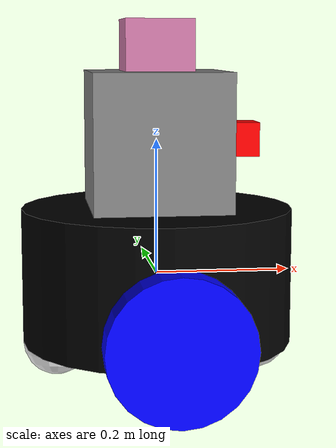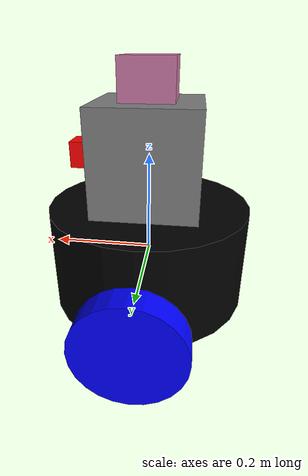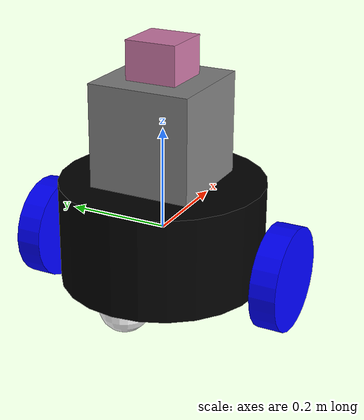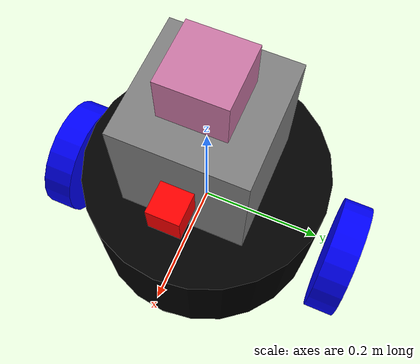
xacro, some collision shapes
<?xml version='1.0'?>

<robot name="ground_bot_diff" xmlns:xacro="http://www.ros.org/wiki/xacro">

<xacro:include filename="$(find udacity_bot)/urdf/ground_bot_diff.gazebo"/>

	<link name="robot_footprint"></link>

	<joint name="robot_footprint_joint" type="fixed">
		<origin xyz="0 0 0" rpy="0 0 0"/>
		<parent link="robot_footprint"/>
		<child link="chassis"/>
	</joint>

	<link name='chassis'>
		<pose>0 0 0.05 0 0 0</pose>

		<inertial>
			<mass value="20.0"/>
			<origin xyz="0 0 0" rpy="0 0 0"/>
			<inertia
			ixx="0.26" ixy="0" ixz="0"
			iyy="0.26" iyz="0"
			izz="0.4"
			/>
    	</inertial>

    	<collision name='collision'>
    		<origin xyz="0 0 0" rpy="0 0 0"/>
    		<geometry>
    			<cylinder radius="0.2" length="0.2"/>
    		</geometry>
    	</collision>

    	<visual name='chassis_visual'>
    		<origin xyz="0 0 0" rpy="0 0 0"/>
    		<geometry>
    			<cylinder radius="0.2" length="0.2"/>
    		</geometry>
    		<material name="black">
    			<color rgba="0 0 0 1"/>
    		</material>
    	</visual>

    	<collision name='back_caster_collision'>
    		<origin xyz="-0.15 0 -0.1" rpy="0 0 0"/>
    		<geometry>
    			<sphere radius="0.05"/>
    		</geometry>
    		<surface>
    			<friction>
    				<ode>
    					<mu>0</mu>
    					<mu2>0</mu2>
    				</ode>
    			</friction>
    		</surface>
    	</collision>

    	<visual name='back_caster_visual'>
    		<origin xyz="-0.15 0 -0.1" rpy="0 0 0"/>
    		<geometry>
    			<sphere radius="0.05"/>
    		</geometry>
    		<material name="white">
    			<color rgba="1 1 1 1"/>
    		</material>
    	</visual>

    	<collision name='front_caster_collision'>
    		<origin xyz="0.15 0 -0.1" rpy="0 0 0"/>
    		<geometry>
    			<sphere radius="0.05"/>
    		</geometry>
    		<surface>
    			<friction>
    				<ode>
    					<mu>0</mu>
    					<mu2>0</mu2>
    				</ode>
    			</friction>
    		</surface>
    	</collision>

    	<visual name='front_caster_visual'>
    		<origin xyz="0.15 0 -0.1" rpy="0 0 0"/>
    		<geometry>
    			<sphere radius="0.05"/>
    		</geometry>
    		<material name="white">
    			<color rgba="1 1 1 1"/>
    		</material>
    	</visual>

	</link>

	<joint name="upper_joint" type="fixed">
		<origin xyz="0 0 0.2" rpy="0 0 0"/>
		<parent link="chassis"/>
		<child link="upper_body"/>
	</joint>

	<link name="upper_body">
		<inertial>
			<mass value="10.0"/>
			<origin xyz="0 0 0" rpy="0 0 0"/>
			<inertia
			ixx="0.067" ixy="0" ixz="0"
			iyy="0.067" iyz="0"
			izz="0.067"
			/>
    	</inertial>

    	<visual name='upper_body_visual'>
    		<origin xyz="0 0 0" rpy="0 0 0"/>
    		<geometry>
    			<box size="0.2 0.2 0.2"/>
    		</geometry>
    		<material name="grey">
    			<color rgba="0.5 0.5 0.5 1"/>
    		</material>
    	</visual>

    	<collision name='upper_body_collision'>
    		<origin xyz="0 0 0" rpy="0 0 0"/>
			<geometry>
    			<box size="0.2 0.2 0.2"/>
    		</geometry>
    	</collision>
    </link>

	<joint name="left_wheel_hinge" type="continuous">
		<origin xyz="0 0.25 -0.05" rpy="0 0 0"/>
		<parent link="chassis"/>
		<child link="left_wheel"/>
		<axis xyz="0 1 0" rpy="0 0 0"/>
		<limit effort="10000" velocity="1000"/>
		<joint_properties damping="1.0" friction="1.0"/>
	</joint>

	<link name='left_wheel'>
		<inertial>
			<mass value="5.0"/>
			<origin xyz="0 0 0" rpy="0 1.5707 1.5707"/>
			<inertia
			ixx="0.1" ixy="0" ixz="0"
			iyy="0.1" iyz="0"
			izz="0.1"
			/>
    	</inertial>

    	<collision name='left_wheel_colision'>
			<origin xyz="0 0 0" rpy="0 1.5707 1.5707"/>
			<geometry>
				<cylinder radius="0.1" length="0.05"/>
			</geometry>
			<surface>
    			<friction>
    				<ode>
    					<mu>0.5</mu>
    					<mu2>0.5</mu2>
    				</ode>
    			</friction>
    		</surface>
		</collision>

		<visual name='left_wheel_visual'>
			<origin xyz="0 0 0" rpy="0 1.5707 1.5707"/>
			<geometry>
				<cylinder radius="0.1" length="0.05"/>
			</geometry>
			<material name="blue">
    			<color rgba="0 0 1 1"/>
    		</material>
		</visual>
	</link>

	<joint name="right_wheel_hinge" type="continuous">
		<origin xyz="0 -0.25 -0.05" rpy="0 0 0"/>
		<parent link="chassis"/>
		<child link="right_wheel"/>
		<axis xyz="0 1 0" rpy="0 0 0"/>
		<limit effort="10000" velocity="1000"/>
		<joint_properties damping="1.0" friction="1.0"/>
	</joint>

	<link name='right_wheel'>
		<inertial>
			<mass value="5.0"/>
			<origin xyz="0 0 0" rpy="0 1.5707 1.5707"/>
			<inertia
			ixx="0.1" ixy="0" ixz="0"
			iyy="0.1" iyz="0"
			izz="0.1"
			/>
    	</inertial>

    	<collision name='right_wheel_colision'>
			<origin xyz="0 0 0" rpy="0 1.5707 1.5707"/>
			<geometry>
				<cylinder radius="0.1" length="0.05"/>
			</geometry>
			<surface>
    			<friction>
    				<ode>
    					<mu>0.5</mu>
    					<mu2>0.5</mu2>
    				</ode>
    			</friction>
    		</surface>
		</collision>

		<visual name='right_wheel_visual'>
			<origin xyz="0 0 0" rpy="0 1.5707 1.5707"/>
			<geometry>
				<cylinder radius="0.1" length="0.05"/>
			</geometry>
			<material name="blue">
    			<color rgba="0 0 1 1"/>
    		</material>
		</visual>
	</link>

	<joint type="fixed" name="camera_joint">
		<origin xyz="0.125 0 0.2" rpy="0 0 0"/>
		<child link="camera"/>
		<parent link="chassis"/>
	</joint>

	<link name='camera'>

		<inertial>
		  <mass value="0.1"/>
		  <origin xyz="0 0 0" rpy="0 0 0"/>
		  <inertia ixx="1e-6" ixy="0" ixz="0" iyy="1e-6" iyz="0" izz="1e-6"/>
		</inertial>

		<visual name='camera_visual'>
		  <origin xyz="0 0 0" rpy="0 0 0"/>
		  <geometry>
		    <box size="0.05 0.05 0.05"/>
		  </geometry>
		  <material name="red">
		    <color rgba="1 0 0 1"/>
		  </material>
		</visual>

		<collision name='camera_collision'>
		  <origin xyz="0 0 0" rpy="0 0 0"/>
		  <geometry>
		    <box size="0.05 0.05 0.05"/>
		  </geometry>
		</collision>

	</link>

	<joint type="fixed" name="hokuyo_joint">
		<origin xyz="0 0 .325" rpy="0 0 0"/>
		<child link="hokuyo"/>
		<parent link="chassis"/>
	</joint>

	<link name='hokuyo'>

		<inertial>
			<mass value="0.1"/>
			<origin xyz="0 0 0" rpy="0 0 0"/>
			<inertia ixx="1e-6" ixy="0" ixz="0" iyy="1e-6" iyz="0" izz="1e-6"/>
		</inertial>

		<visual name='hokuyo_visual'>
			<origin xyz="0 0 0" rpy="0 0 0"/>
			<geometry>
				<mesh filename="package://udacity_bot/meshes/hokuyo.dae"/>
			</geometry>
		</visual>

		<collision name='hokuyo_collision'>
			<origin xyz="0 0 0" rpy="0 0 0"/>
			<geometry>
				<box size="0.1 0.1 0.1"/>
			</geometry>
		</collision>

	</link>

</robot>
